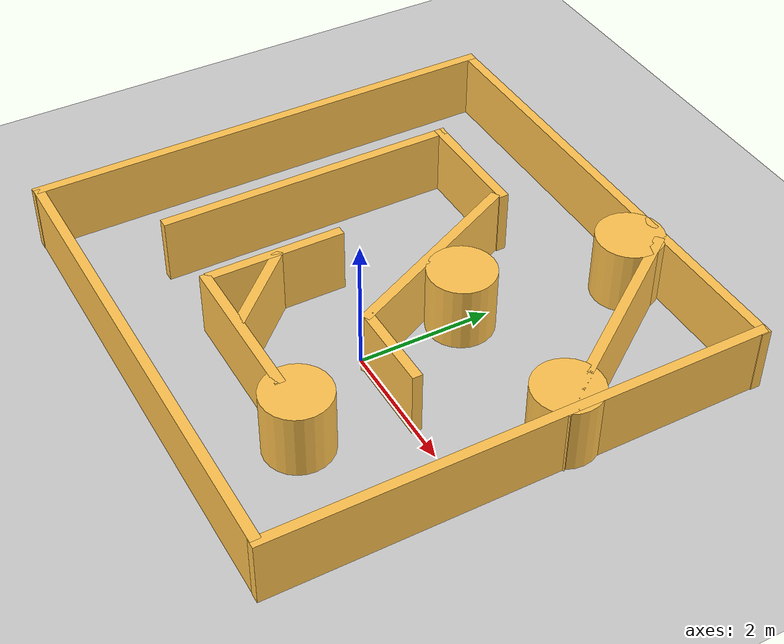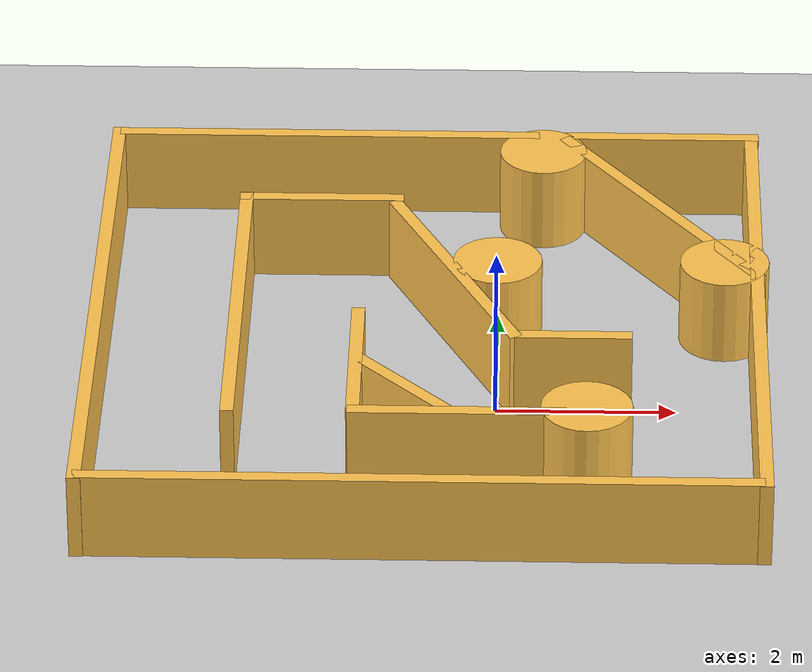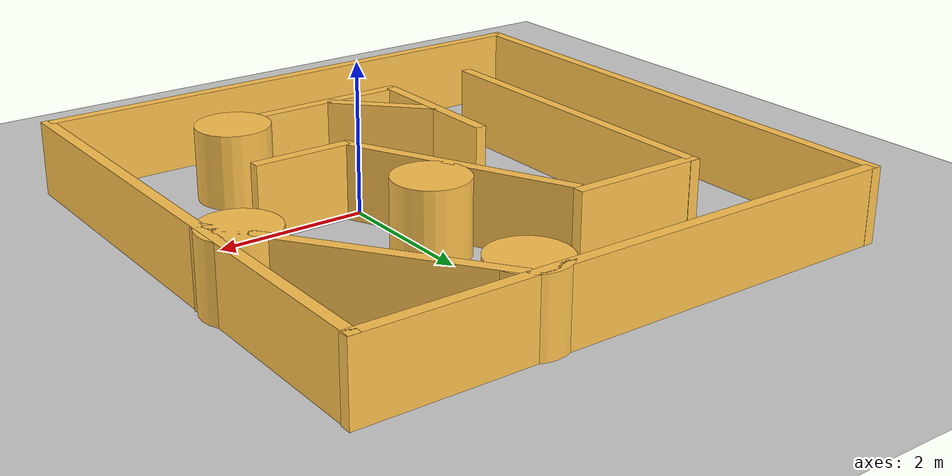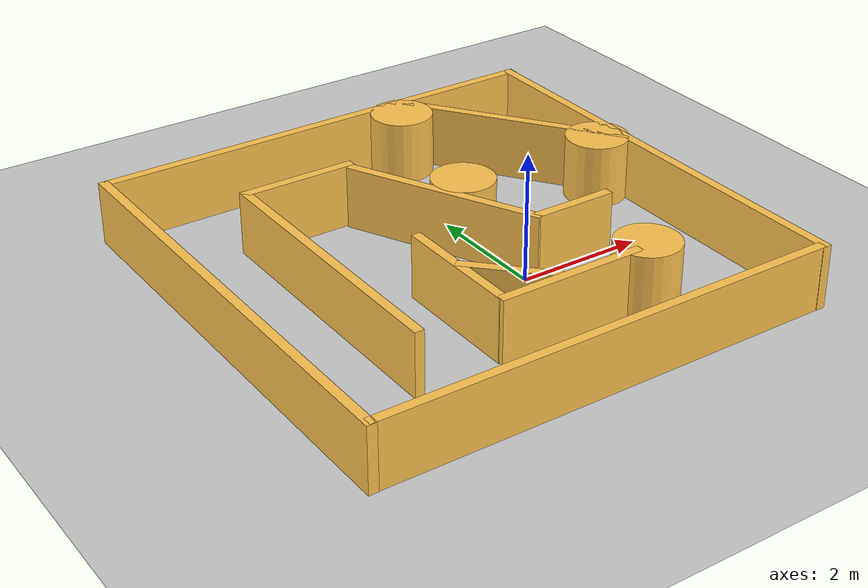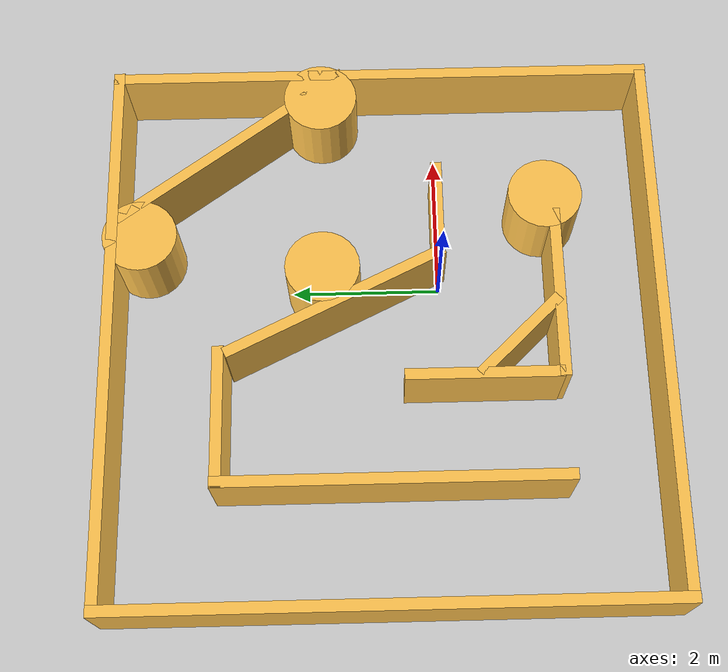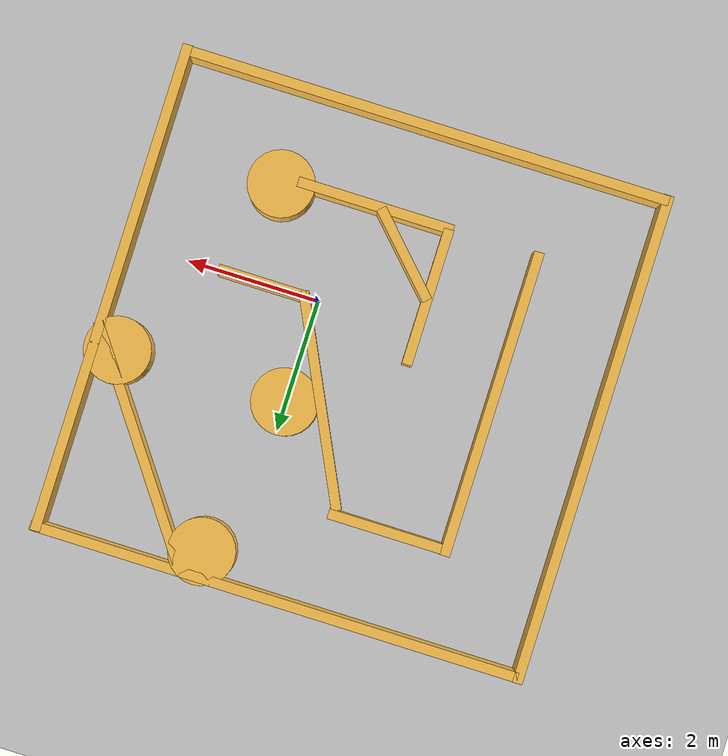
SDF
<sdf version="1.8">
 <world name="warehouse_world">
  <physics name="1ms" type="ignored">
   <max_step_size>0.001</max_step_size>
   <real_time_factor>1.0</real_time_factor>
  </physics>
  <plugin filename="gz-sim-physics-system" name="gz::sim::systems::Physics"/>
  <plugin filename="gz-sim-scene-broadcaster-system" name="gz::sim::systems::SceneBroadcaster"/>
  <light type="directional" name="sun">
   <pose>0 0 10 0 0 0</pose>
   <diffuse>0.8 0.8 0.8 1</diffuse>
   <specular>0.2 0.2 0.2 1</specular>
   <direction>-0.5 0.1 -0.9</direction>
  </light>
  <model name="ground_plane">
   <static>true</static>
   <link name="link">
    <collision name="collision">
     <geometry><plane><normal>0 0 1</normal><size>100 100</size></plane></geometry>
    </collision>
    <visual name="visual">
     <geometry><plane><normal>0 0 1</normal><size>100 100</size></plane></geometry>
     <material><ambient>0.8 0.8 0.8 1</ambient><diffuse>0.8 0.8 0.8 1</diffuse></material>
    </visual>
   </link>
  </model>
  <include><name>warehouse</name><uri>model://small_warehouse</uri></include>
 </world>
</sdf>
